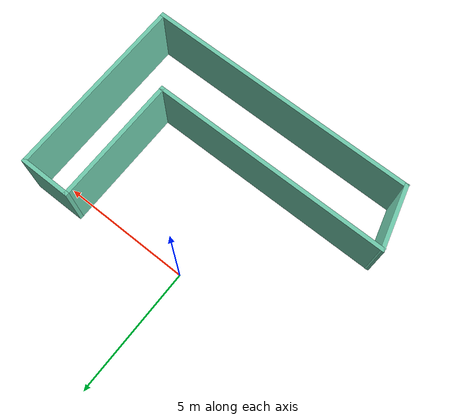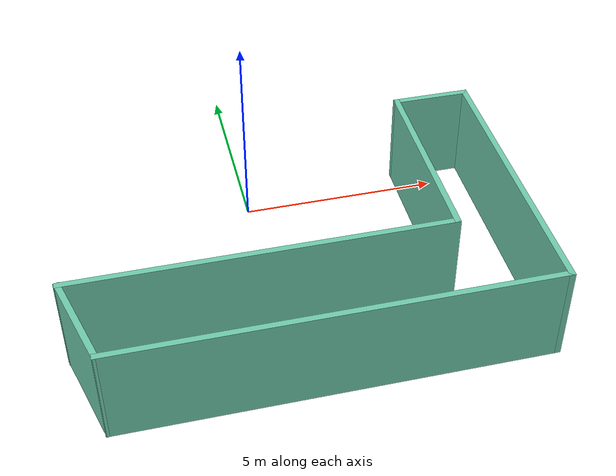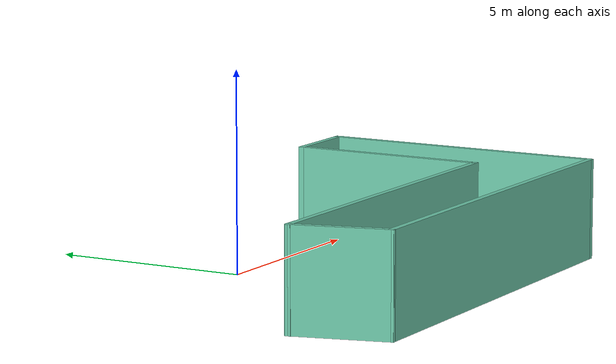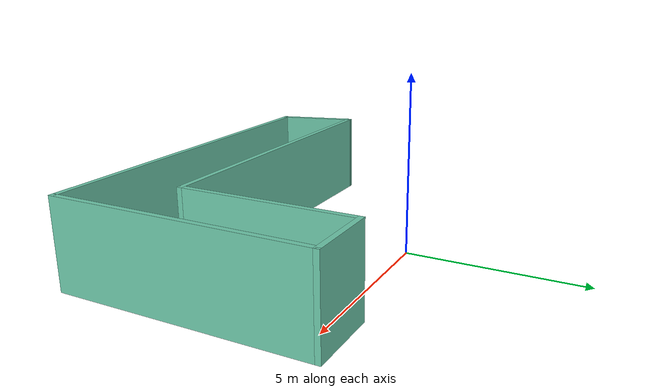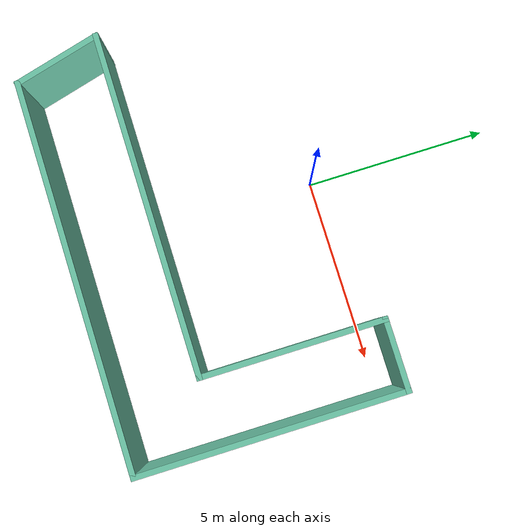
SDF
<?xml version='1.0'?>
<sdf version='1.6'>
  <model name='final'>
    <pose frame=''>0.522701 -3.00029 0 0 -0 0</pose>
    <link name='Wall_1'>
      <collision name='Wall_1_Collision'>
        <geometry>
          <box>
            <size>10.5 0.15 2.5</size>
          </box>
        </geometry>
        <pose frame=''>0 0 1.25 0 -0 0</pose>
      </collision>
      <visual name='Wall_1_Visual'>
        <pose frame=''>0 0 1.25 0 -0 0</pose>
        <geometry>
          <box>
            <size>10.5 0.15 2.5</size>
          </box>
        </geometry>
        <material>
          <script>
            <uri>file://media/materials/scripts/gazebo.material</uri>
            <name>Gazebo/Grey</name>
          </script>
          <ambient>0.435294 0.796078 0.67451 1</ambient>
        </material>
        <meta>
          <layer>0</layer>
        </meta>
      </visual>
      <pose frame=''>0.308396 -3.5416 0 0 -0 0</pose>
    </link>
    <link name='Wall_2'>
      <collision name='Wall_2_Collision'>
        <geometry>
          <box>
            <size>7.25 0.15 2.5</size>
          </box>
        </geometry>
        <pose frame=''>0 0 1.25 0 -0 0</pose>
      </collision>
      <visual name='Wall_2_Visual'>
        <pose frame=''>0 0 1.25 0 -0 0</pose>
        <geometry>
          <box>
            <size>7.25 0.15 2.5</size>
          </box>
        </geometry>
        <material>
          <script>
            <uri>file://media/materials/scripts/gazebo.material</uri>
            <name>Gazebo/Grey</name>
          </script>
          <ambient>0.435294 0.796078 0.67451 1</ambient>
        </material>
        <meta>
          <layer>0</layer>
        </meta>
      </visual>
      <pose frame=''>5.4834 0.008396 0 0 -0 1.5708</pose>
    </link>
    <link name='Wall_3'>
      <collision name='Wall_3_Collision'>
        <geometry>
          <box>
            <size>2 0.15 2.5</size>
          </box>
        </geometry>
        <pose frame=''>0 0 1.25 0 -0 0</pose>
      </collision>
      <visual name='Wall_3_Visual'>
        <pose frame=''>0 0 1.25 0 -0 0</pose>
        <geometry>
          <box>
            <size>2 0.15 2.5</size>
          </box>
        </geometry>
        <material>
          <script>
            <uri>file://media/materials/scripts/gazebo.material</uri>
            <name>Gazebo/Grey</name>
          </script>
          <ambient>0.435294 0.796078 0.67451 1</ambient>
        </material>
        <meta>
          <layer>0</layer>
        </meta>
      </visual>
      <pose frame=''>4.5584 3.5584 0 0 -0 3.14159</pose>
    </link>
    <link name='Wall_4'>
      <collision name='Wall_4_Collision'>
        <geometry>
          <box>
            <size>5 0.15 2.5</size>
          </box>
        </geometry>
        <pose frame=''>0 0 1.25 0 -0 0</pose>
      </collision>
      <visual name='Wall_4_Visual'>
        <pose frame=''>0 0 1.25 0 -0 0</pose>
        <geometry>
          <box>
            <size>5 0.15 2.5</size>
          </box>
        </geometry>
        <material>
          <script>
            <uri>file://media/materials/scripts/gazebo.material</uri>
            <name>Gazebo/Grey</name>
          </script>
          <ambient>0.435294 0.796078 0.67451 1</ambient>
        </material>
        <meta>
          <layer>0</layer>
        </meta>
      </visual>
      <pose frame=''>3.6334 1.1334 0 0 0 -1.5708</pose>
    </link>
    <link name='Wall_5'>
      <collision name='Wall_5_Collision'>
        <geometry>
          <box>
            <size>9.25 0.15 2.5</size>
          </box>
        </geometry>
        <pose frame=''>0 0 1.25 0 -0 0</pose>
      </collision>
      <visual name='Wall_5_Visual'>
        <pose frame=''>0 0 1.25 0 -0 0</pose>
        <geometry>
          <box>
            <size>9.25 0.15 2.5</size>
          </box>
        </geometry>
        <material>
          <script>
            <uri>file://media/materials/scripts/gazebo.material</uri>
            <name>Gazebo/Grey</name>
          </script>
          <ambient>0.435294 0.796078 0.67451 1</ambient>
        </material>
        <meta>
          <layer>0</layer>
        </meta>
      </visual>
      <pose frame=''>-0.916604 -1.2916 0 0 -0 3.14159</pose>
    </link>
    <link name='Wall_6'>
      <collision name='Wall_6_Collision'>
        <geometry>
          <box>
            <size>2.47863 0.15 2.5</size>
          </box>
        </geometry>
        <pose frame=''>0 0 1.25 0 -0 0</pose>
      </collision>
      <visual name='Wall_6_Visual'>
        <pose frame=''>0 0 1.25 0 -0 0</pose>
        <geometry>
          <box>
            <size>2.47863 0.15 2.5</size>
          </box>
        </geometry>
        <material>
          <script>
            <uri>file://media/materials/scripts/gazebo.material</uri>
            <name>Gazebo/Grey</name>
          </script>
          <ambient>0.435294 0.796078 0.67451 1</ambient>
        </material>
        <meta>
          <layer>0</layer>
        </meta>
      </visual>
      <pose frame=''>-5.1666 -2.4166 0 0 0 -1.31019</pose>
    </link>
    <static>1</static>
  </model>
</sdf>
